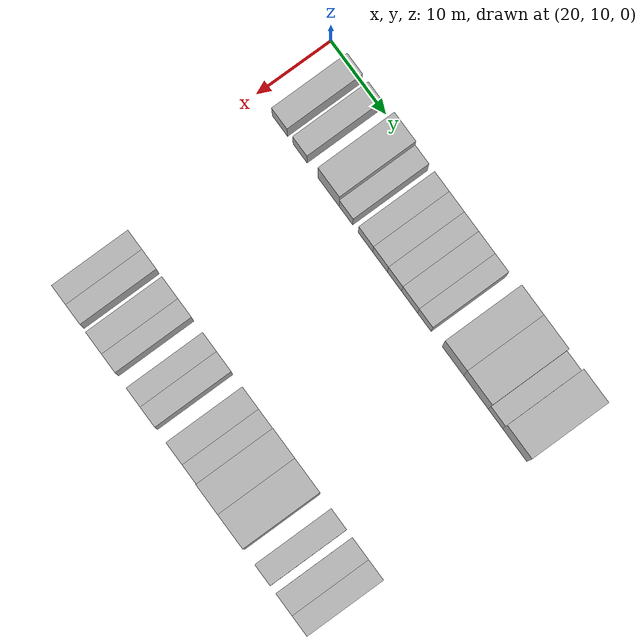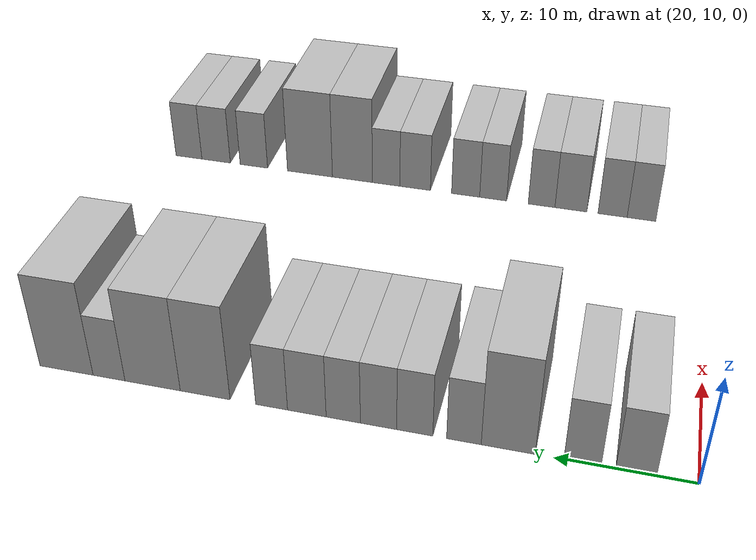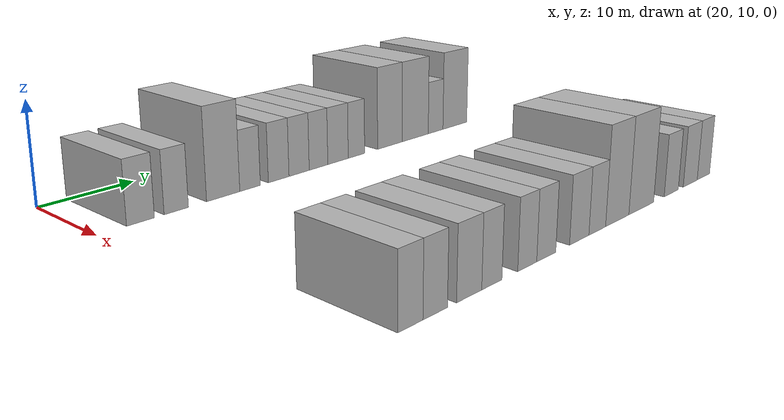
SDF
<sdf version="1.6">
 <world name="default">
  <model name="building_54">
   <static>1</static>
   <pose>25.0000 14.2890 0 0.000000 0.000000 0.000000</pose>
   <link name="link">
    <pose>0 0 3.00 0 0 0</pose>
    <collision name="collision"><geometry><box><size>10.0000 2.7950 6.0000</size></box></geometry></collision>
    <visual name="visual">
     <cast_shadows>0</cast_shadows>
     <geometry><box><size>10.0000 2.7950 6.0000</size></box></geometry>
     <material>
      <script>
       <uri>model://HANNAS_wall/materials/scripts</uri>
       <uri>model://HANNAS_wall/materials/textures</uri>
       <name>vrc/HANNAS_wall</name>
      </script>
     </material>
    </visual>
   </link>
  </model>
  <model name="building_55">
   <static>1</static>
   <pose>25.0000 17.9822 0 0.000000 0.000000 0.000000</pose>
   <link name="link">
    <pose>0 0 3.00 0 0 0</pose>
    <collision name="collision"><geometry><box><size>10.0000 2.5914 6.0000</size></box></geometry></collision>
    <visual name="visual">
     <cast_shadows>0</cast_shadows>
     <geometry><box><size>10.0000 2.5914 6.0000</size></box></geometry>
     <material>
      <script>
       <uri>model://HANNAS_wall/materials/scripts</uri>
       <uri>model://HANNAS_wall/materials/textures</uri>
       <name>vrc/HANNAS_wall</name>
      </script>
     </material>
    </visual>
   </link>
  </model>
  <model name="building_56">
   <static>1</static>
   <pose>25.0000 23.2007 0 0.000000 0.000000 0.000000</pose>
   <link name="link">
    <pose>0 0 4.50 0 0 0</pose>
    <collision name="collision"><geometry><box><size>10.0000 3.8457 9.0000</size></box></geometry></collision>
    <visual name="visual">
     <cast_shadows>0</cast_shadows>
     <geometry><box><size>10.0000 3.8457 9.0000</size></box></geometry>
     <material>
      <script>
       <uri>model://HANNAS_wall/materials/scripts</uri>
       <uri>model://HANNAS_wall/materials/textures</uri>
       <name>vrc/HANNAS_wall</name>
      </script>
     </material>
    </visual>
   </link>
  </model>
  <model name="building_57">
   <static>1</static>
   <pose>25.0000 26.3713 0 0.000000 0.000000 0.000000</pose>
   <link name="link">
    <pose>0 0 3.00 0 0 0</pose>
    <collision name="collision"><geometry><box><size>10.0000 2.4954 6.0000</size></box></geometry></collision>
    <visual name="visual">
     <cast_shadows>0</cast_shadows>
     <geometry><box><size>10.0000 2.4954 6.0000</size></box></geometry>
     <material>
      <script>
       <uri>model://HANNAS_wall/materials/scripts</uri>
       <uri>model://HANNAS_wall/materials/textures</uri>
       <name>vrc/HANNAS_wall</name>
      </script>
     </material>
    </visual>
   </link>
  </model>
  <model name="building_58">
   <static>1</static>
   <pose>25.0000 29.9428 0 0.000000 0.000000 0.000000</pose>
   <link name="link">
    <pose>0 0 3.00 0 0 0</pose>
    <collision name="collision"><geometry><box><size>10.0000 2.6477 6.0000</size></box></geometry></collision>
    <visual name="visual">
     <cast_shadows>0</cast_shadows>
     <geometry><box><size>10.0000 2.6477 6.0000</size></box></geometry>
     <material>
      <script>
       <uri>model://HANNAS_wall/materials/scripts</uri>
       <uri>model://HANNAS_wall/materials/textures</uri>
       <name>vrc/HANNAS_wall</name>
      </script>
     </material>
    </visual>
   </link>
  </model>
  <model name="building_59">
   <static>1</static>
   <pose>25.0000 32.6140 0 0.000000 0.000000 0.000000</pose>
   <link name="link">
    <pose>0 0 3.00 0 0 0</pose>
    <collision name="collision"><geometry><box><size>10.0000 2.6945 6.0000</size></box></geometry></collision>
    <visual name="visual">
     <cast_shadows>0</cast_shadows>
     <geometry><box><size>10.0000 2.6945 6.0000</size></box></geometry>
     <material>
      <script>
       <uri>model://HANNAS_wall/materials/scripts</uri>
       <uri>model://HANNAS_wall/materials/textures</uri>
       <name>vrc/HANNAS_wall</name>
      </script>
     </material>
    </visual>
   </link>
  </model>
  <model name="building_60">
   <static>1</static>
   <pose>25.0000 35.2494 0 0.000000 0.000000 0.000000</pose>
   <link name="link">
    <pose>0 0 3.00 0 0 0</pose>
    <collision name="collision"><geometry><box><size>10.0000 2.5763 6.0000</size></box></geometry></collision>
    <visual name="visual">
     <cast_shadows>0</cast_shadows>
     <geometry><box><size>10.0000 2.5763 6.0000</size></box></geometry>
     <material>
      <script>
       <uri>model://HANNAS_wall/materials/scripts</uri>
       <uri>model://HANNAS_wall/materials/textures</uri>
       <name>vrc/HANNAS_wall</name>
      </script>
     </material>
    </visual>
   </link>
  </model>
  <model name="building_61">
   <static>1</static>
   <pose>25.0000 38.0067 0 0.000000 0.000000 0.000000</pose>
   <link name="link">
    <pose>0 0 3.00 0 0 0</pose>
    <collision name="collision"><geometry><box><size>10.0000 2.9383 6.0000</size></box></geometry></collision>
    <visual name="visual">
     <cast_shadows>0</cast_shadows>
     <geometry><box><size>10.0000 2.9383 6.0000</size></box></geometry>
     <material>
      <script>
       <uri>model://HANNAS_wall/materials/scripts</uri>
       <uri>model://HANNAS_wall/materials/textures</uri>
       <name>vrc/HANNAS_wall</name>
      </script>
     </material>
    </visual>
   </link>
  </model>
  <model name="building_62">
   <static>1</static>
   <pose>25.0000 40.7028 0 0.000000 0.000000 0.000000</pose>
   <link name="link">
    <pose>0 0 3.00 0 0 0</pose>
    <collision name="collision"><geometry><box><size>10.0000 2.4539 6.0000</size></box></geometry></collision>
    <visual name="visual">
     <cast_shadows>0</cast_shadows>
     <geometry><box><size>10.0000 2.4539 6.0000</size></box></geometry>
     <material>
      <script>
       <uri>model://HANNAS_wall/materials/scripts</uri>
       <uri>model://HANNAS_wall/materials/textures</uri>
       <name>vrc/HANNAS_wall</name>
      </script>
     </material>
    </visual>
   </link>
  </model>
  <model name="building_63">
   <static>1</static>
   <pose>25.0000 45.8906 0 0.000000 0.000000 0.000000</pose>
   <link name="link">
    <pose>0 0 4.50 0 0 0</pose>
    <collision name="collision"><geometry><box><size>10.0000 3.9216 9.0000</size></box></geometry></collision>
    <visual name="visual">
     <cast_shadows>0</cast_shadows>
     <geometry><box><size>10.0000 3.9216 9.0000</size></box></geometry>
     <material>
      <script>
       <uri>model://HANNAS_wall/materials/scripts</uri>
       <uri>model://HANNAS_wall/materials/textures</uri>
       <name>vrc/HANNAS_wall</name>
      </script>
     </material>
    </visual>
   </link>
  </model>
  <model name="building_64">
   <static>1</static>
   <pose>25.0000 50.0739 0 0.000000 0.000000 0.000000</pose>
   <link name="link">
    <pose>0 0 4.50 0 0 0</pose>
    <collision name="collision"><geometry><box><size>10.0000 4.4449 9.0000</size></box></geometry></collision>
    <visual name="visual">
     <cast_shadows>0</cast_shadows>
     <geometry><box><size>10.0000 4.4449 9.0000</size></box></geometry>
     <material>
      <script>
       <uri>model://HANNAS_wall/materials/scripts</uri>
       <uri>model://HANNAS_wall/materials/textures</uri>
       <name>vrc/HANNAS_wall</name>
      </script>
     </material>
    </visual>
   </link>
  </model>
  <model name="building_65">
   <static>1</static>
   <pose>25.0000 53.5975 0 0.000000 0.000000 0.000000</pose>
   <link name="link">
    <pose>0 0 3.00 0 0 0</pose>
    <collision name="collision"><geometry><box><size>10.0000 2.6024 6.0000</size></box></geometry></collision>
    <visual name="visual">
     <cast_shadows>0</cast_shadows>
     <geometry><box><size>10.0000 2.6024 6.0000</size></box></geometry>
     <material>
      <script>
       <uri>model://HANNAS_wall/materials/scripts</uri>
       <uri>model://HANNAS_wall/materials/textures</uri>
       <name>vrc/HANNAS_wall</name>
      </script>
     </material>
    </visual>
   </link>
  </model>
  <model name="building_66">
   <static>1</static>
   <pose>25.0000 57.0975 0 0.000000 0.000000 0.000000</pose>
   <link name="link">
    <pose>0 0 4.50 0 0 0</pose>
    <collision name="collision"><geometry><box><size>10.0000 4.3976 9.0000</size></box></geometry></collision>
    <visual name="visual">
     <cast_shadows>0</cast_shadows>
     <geometry><box><size>10.0000 4.3976 9.0000</size></box></geometry>
     <material>
      <script>
       <uri>model://HANNAS_wall/materials/scripts</uri>
       <uri>model://HANNAS_wall/materials/textures</uri>
       <name>vrc/HANNAS_wall</name>
      </script>
     </material>
    </visual>
   </link>
  </model>
  <model name="building_160">
   <static>1</static>
   <pose>55.0000 15.6962 0 0.000000 0.000000 0.000000</pose>
   <link name="link">
    <pose>0 0 3.00 0 0 0</pose>
    <collision name="collision"><geometry><box><size>10.0000 2.5406 6.0000</size></box></geometry></collision>
    <visual name="visual">
     <cast_shadows>0</cast_shadows>
     <geometry><box><size>10.0000 2.5406 6.0000</size></box></geometry>
     <material>
      <script>
       <uri>model://HANNAS_wall/materials/scripts</uri>
       <uri>model://HANNAS_wall/materials/textures</uri>
       <name>vrc/HANNAS_wall</name>
      </script>
     </material>
    </visual>
   </link>
  </model>
  <model name="building_161">
   <static>1</static>
   <pose>55.0000 18.2702 0 0.000000 0.000000 0.000000</pose>
   <link name="link">
    <pose>0 0 3.00 0 0 0</pose>
    <collision name="collision"><geometry><box><size>10.0000 2.6073 6.0000</size></box></geometry></collision>
    <visual name="visual">
     <cast_shadows>0</cast_shadows>
     <geometry><box><size>10.0000 2.6073 6.0000</size></box></geometry>
     <material>
      <script>
       <uri>model://HANNAS_wall/materials/scripts</uri>
       <uri>model://HANNAS_wall/materials/textures</uri>
       <name>vrc/HANNAS_wall</name>
      </script>
     </material>
    </visual>
   </link>
  </model>
  <model name="building_162">
   <static>1</static>
   <pose>55.0000 22.0223 0 0.000000 0.000000 0.000000</pose>
   <link name="link">
    <pose>0 0 3.00 0 0 0</pose>
    <collision name="collision"><geometry><box><size>10.0000 2.8968 6.0000</size></box></geometry></collision>
    <visual name="visual">
     <cast_shadows>0</cast_shadows>
     <geometry><box><size>10.0000 2.8968 6.0000</size></box></geometry>
     <material>
      <script>
       <uri>model://HANNAS_wall/materials/scripts</uri>
       <uri>model://HANNAS_wall/materials/textures</uri>
       <name>vrc/HANNAS_wall</name>
      </script>
     </material>
    </visual>
   </link>
  </model>
  <model name="building_163">
   <static>1</static>
   <pose>55.0000 24.6954 0 0.000000 0.000000 0.000000</pose>
   <link name="link">
    <pose>0 0 3.00 0 0 0</pose>
    <collision name="collision"><geometry><box><size>10.0000 2.4495 6.0000</size></box></geometry></collision>
    <visual name="visual">
     <cast_shadows>0</cast_shadows>
     <geometry><box><size>10.0000 2.4495 6.0000</size></box></geometry>
     <material>
      <script>
       <uri>model://HANNAS_wall/materials/scripts</uri>
       <uri>model://HANNAS_wall/materials/textures</uri>
       <name>vrc/HANNAS_wall</name>
      </script>
     </material>
    </visual>
   </link>
  </model>
  <model name="building_164">
   <static>1</static>
   <pose>55.0000 29.1751 0 0.000000 0.000000 0.000000</pose>
   <link name="link">
    <pose>0 0 3.00 0 0 0</pose>
    <collision name="collision"><geometry><box><size>10.0000 2.5098 6.0000</size></box></geometry></collision>
    <visual name="visual">
     <cast_shadows>0</cast_shadows>
     <geometry><box><size>10.0000 2.5098 6.0000</size></box></geometry>
     <material>
      <script>
       <uri>model://HANNAS_wall/materials/scripts</uri>
       <uri>model://HANNAS_wall/materials/textures</uri>
       <name>vrc/HANNAS_wall</name>
      </script>
     </material>
    </visual>
   </link>
  </model>
  <model name="building_165">
   <static>1</static>
   <pose>55.0000 31.7508 0 0.000000 0.000000 0.000000</pose>
   <link name="link">
    <pose>0 0 3.00 0 0 0</pose>
    <collision name="collision"><geometry><box><size>10.0000 2.6416 6.0000</size></box></geometry></collision>
    <visual name="visual">
     <cast_shadows>0</cast_shadows>
     <geometry><box><size>10.0000 2.6416 6.0000</size></box></geometry>
     <material>
      <script>
       <uri>model://HANNAS_wall/materials/scripts</uri>
       <uri>model://HANNAS_wall/materials/textures</uri>
       <name>vrc/HANNAS_wall</name>
      </script>
     </material>
    </visual>
   </link>
  </model>
  <model name="building_166">
   <static>1</static>
   <pose>55.0000 36.5321 0 0.000000 0.000000 0.000000</pose>
   <link name="link">
    <pose>0 0 3.00 0 0 0</pose>
    <collision name="collision"><geometry><box><size>10.0000 2.9211 6.0000</size></box></geometry></collision>
    <visual name="visual">
     <cast_shadows>0</cast_shadows>
     <geometry><box><size>10.0000 2.9211 6.0000</size></box></geometry>
     <material>
      <script>
       <uri>model://HANNAS_wall/materials/scripts</uri>
       <uri>model://HANNAS_wall/materials/textures</uri>
       <name>vrc/HANNAS_wall</name>
      </script>
     </material>
    </visual>
   </link>
  </model>
  <model name="building_167">
   <static>1</static>
   <pose>55.0000 39.3184 0 0.000000 0.000000 0.000000</pose>
   <link name="link">
    <pose>0 0 3.00 0 0 0</pose>
    <collision name="collision"><geometry><box><size>10.0000 2.6515 6.0000</size></box></geometry></collision>
    <visual name="visual">
     <cast_shadows>0</cast_shadows>
     <geometry><box><size>10.0000 2.6515 6.0000</size></box></geometry>
     <material>
      <script>
       <uri>model://HANNAS_wall/materials/scripts</uri>
       <uri>model://HANNAS_wall/materials/textures</uri>
       <name>vrc/HANNAS_wall</name>
      </script>
     </material>
    </visual>
   </link>
  </model>
  <model name="building_168">
   <static>1</static>
   <pose>55.0000 42.5968 0 0.000000 0.000000 0.000000</pose>
   <link name="link">
    <pose>0 0 4.50 0 0 0</pose>
    <collision name="collision"><geometry><box><size>10.0000 3.9053 9.0000</size></box></geometry></collision>
    <visual name="visual">
     <cast_shadows>0</cast_shadows>
     <geometry><box><size>10.0000 3.9053 9.0000</size></box></geometry>
     <material>
      <script>
       <uri>model://HANNAS_wall/materials/scripts</uri>
       <uri>model://HANNAS_wall/materials/textures</uri>
       <name>vrc/HANNAS_wall</name>
      </script>
     </material>
    </visual>
   </link>
  </model>
  <model name="building_169">
   <static>1</static>
   <pose>55.0000 46.7780 0 0.000000 0.000000 0.000000</pose>
   <link name="link">
    <pose>0 0 4.50 0 0 0</pose>
    <collision name="collision"><geometry><box><size>10.0000 4.4572 9.0000</size></box></geometry></collision>
    <visual name="visual">
     <cast_shadows>0</cast_shadows>
     <geometry><box><size>10.0000 4.4572 9.0000</size></box></geometry>
     <material>
      <script>
       <uri>model://HANNAS_wall/materials/scripts</uri>
       <uri>model://HANNAS_wall/materials/textures</uri>
       <name>vrc/HANNAS_wall</name>
      </script>
     </material>
    </visual>
   </link>
  </model>
  <model name="building_170">
   <static>1</static>
   <pose>55.0000 52.3924 0 0.000000 0.000000 0.000000</pose>
   <link name="link">
    <pose>0 0 3.00 0 0 0</pose>
    <collision name="collision"><geometry><box><size>10.0000 2.7716 6.0000</size></box></geometry></collision>
    <visual name="visual">
     <cast_shadows>0</cast_shadows>
     <geometry><box><size>10.0000 2.7716 6.0000</size></box></geometry>
     <material>
      <script>
       <uri>model://HANNAS_wall/materials/scripts</uri>
       <uri>model://HANNAS_wall/materials/textures</uri>
       <name>vrc/HANNAS_wall</name>
      </script>
     </material>
    </visual>
   </link>
  </model>
  <model name="building_171">
   <static>1</static>
   <pose>55.0000 56.2330 0 0.000000 0.000000 0.000000</pose>
   <link name="link">
    <pose>0 0 3.00 0 0 0</pose>
    <collision name="collision"><geometry><box><size>10.0000 2.9094 6.0000</size></box></geometry></collision>
    <visual name="visual">
     <cast_shadows>0</cast_shadows>
     <geometry><box><size>10.0000 2.9094 6.0000</size></box></geometry>
     <material>
      <script>
       <uri>model://HANNAS_wall/materials/scripts</uri>
       <uri>model://HANNAS_wall/materials/textures</uri>
       <name>vrc/HANNAS_wall</name>
      </script>
     </material>
    </visual>
   </link>
  </model>
  <model name="building_172">
   <static>1</static>
   <pose>55.0000 59.0252 0 0.000000 0.000000 0.000000</pose>
   <link name="link">
    <pose>0 0 3.00 0 0 0</pose>
    <collision name="collision"><geometry><box><size>10.0000 2.6751 6.0000</size></box></geometry></collision>
    <visual name="visual">
     <cast_shadows>0</cast_shadows>
     <geometry><box><size>10.0000 2.6751 6.0000</size></box></geometry>
     <material>
      <script>
       <uri>model://HANNAS_wall/materials/scripts</uri>
       <uri>model://HANNAS_wall/materials/textures</uri>
       <name>vrc/HANNAS_wall</name>
      </script>
     </material>
    </visual>
   </link>
  </model>
 </world>
</sdf>
